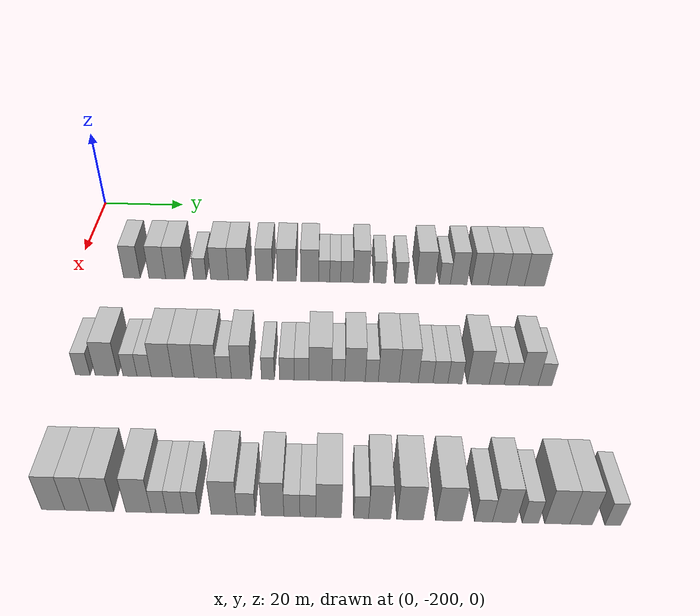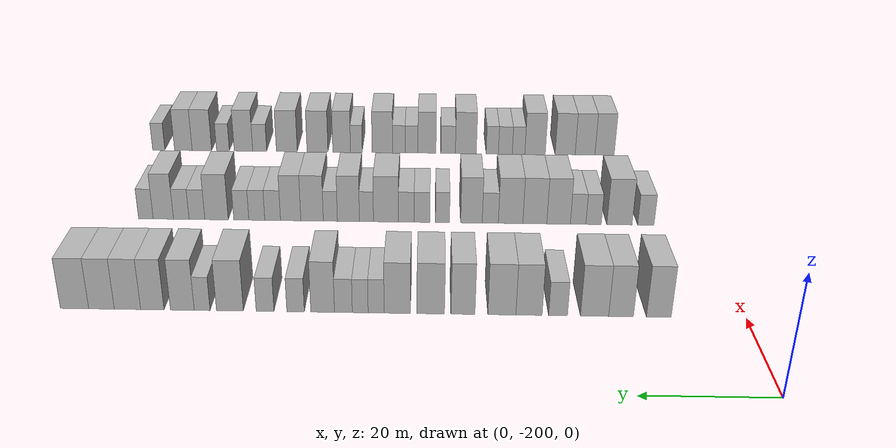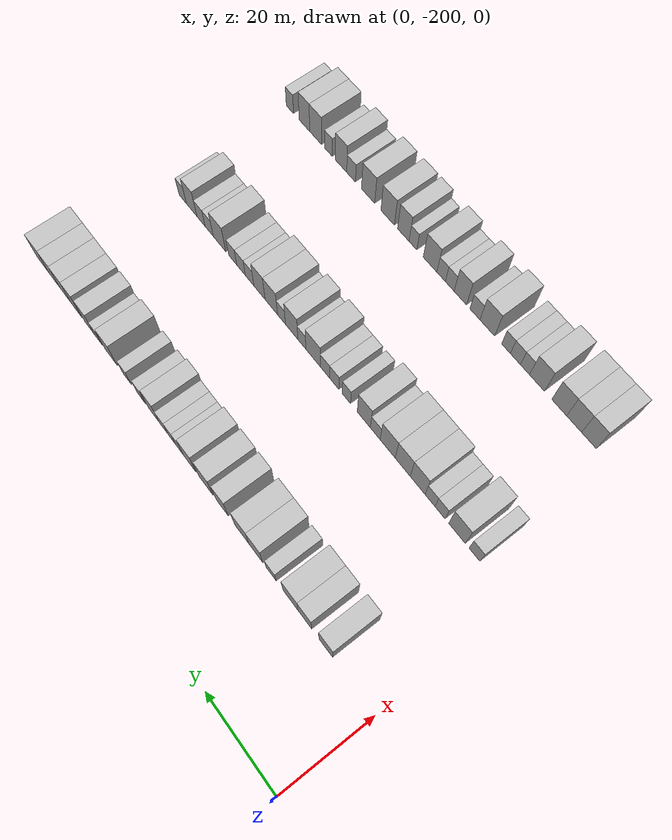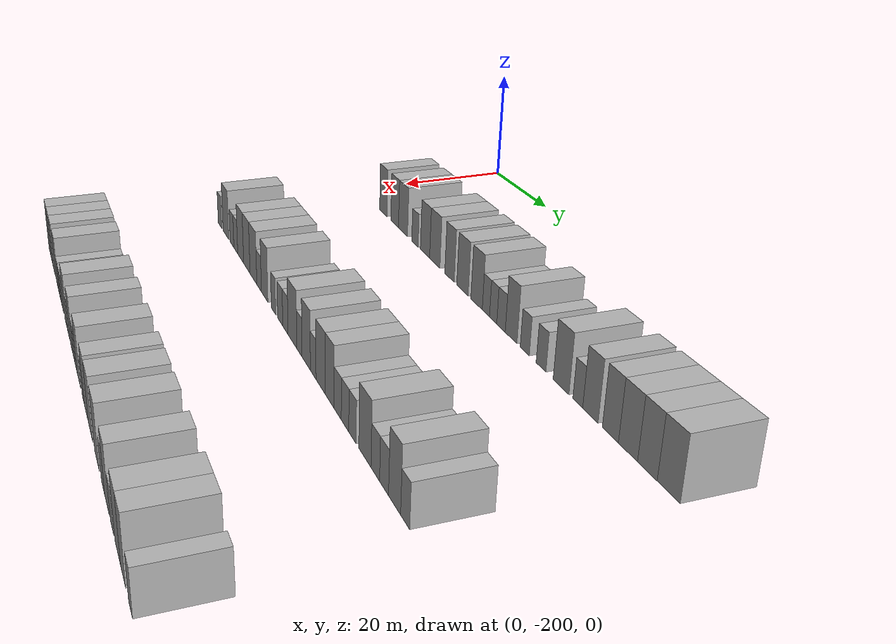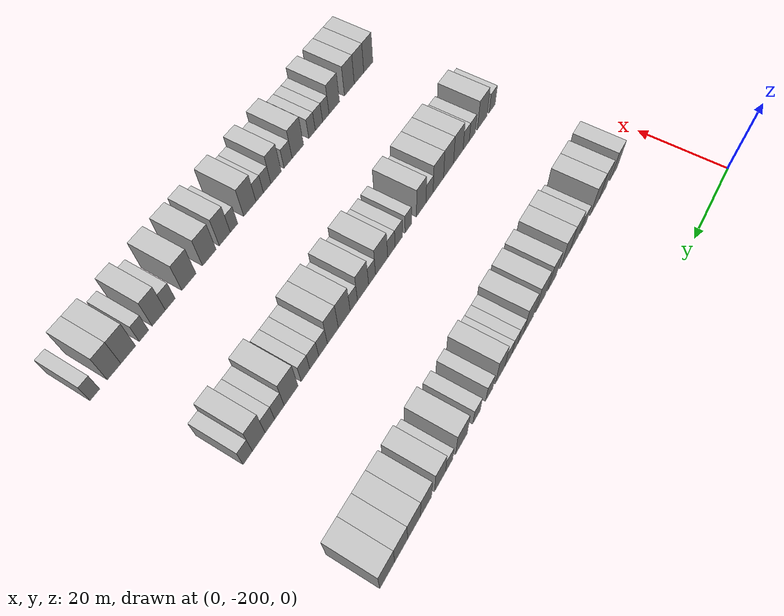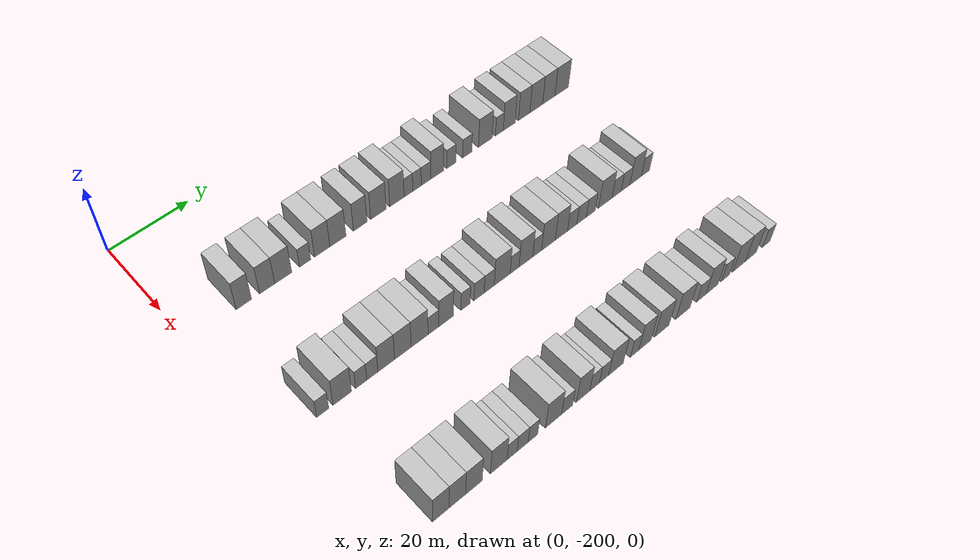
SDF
<sdf version="1.6">
 <world name="default">
  <model name="building_25">
   <static>1</static>
   <pose>25.0000 -186.5937 0 0.000000 0.000000 0.000000</pose>
   <link name="link">
    <pose>0 0 4.50 0 0 0</pose>
    <collision name="collision"><geometry><box><size>10.0000 3.7844 9.0000</size></box></geometry></collision>
    <visual name="visual">
     <cast_shadows>0</cast_shadows>
     <geometry><box><size>10.0000 3.7844 9.0000</size></box></geometry>
     <material>
      <script>
       <uri>model://HANNAS_wall/materials/scripts</uri>
       <uri>model://HANNAS_wall/materials/textures</uri>
       <name>vrc/HANNAS_wall</name>
      </script>
     </material>
    </visual>
   </link>
  </model>
  <model name="building_26">
   <static>1</static>
   <pose>25.0000 -180.8033 0 0.000000 0.000000 0.000000</pose>
   <link name="link">
    <pose>0 0 4.50 0 0 0</pose>
    <collision name="collision"><geometry><box><size>10.0000 3.7964 9.0000</size></box></geometry></collision>
    <visual name="visual">
     <cast_shadows>0</cast_shadows>
     <geometry><box><size>10.0000 3.7964 9.0000</size></box></geometry>
     <material>
      <script>
       <uri>model://HANNAS_wall/materials/scripts</uri>
       <uri>model://HANNAS_wall/materials/textures</uri>
       <name>vrc/HANNAS_wall</name>
      </script>
     </material>
    </visual>
   </link>
  </model>
  <model name="building_27">
   <static>1</static>
   <pose>25.0000 -176.7418 0 0.000000 0.000000 0.000000</pose>
   <link name="link">
    <pose>0 0 4.50 0 0 0</pose>
    <collision name="collision"><geometry><box><size>10.0000 4.3265 9.0000</size></box></geometry></collision>
    <visual name="visual">
     <cast_shadows>0</cast_shadows>
     <geometry><box><size>10.0000 4.3265 9.0000</size></box></geometry>
     <material>
      <script>
       <uri>model://HANNAS_wall/materials/scripts</uri>
       <uri>model://HANNAS_wall/materials/textures</uri>
       <name>vrc/HANNAS_wall</name>
      </script>
     </material>
    </visual>
   </link>
  </model>
  <model name="building_28">
   <static>1</static>
   <pose>25.0000 -171.1275 0 0.000000 0.000000 0.000000</pose>
   <link name="link">
    <pose>0 0 3.00 0 0 0</pose>
    <collision name="collision"><geometry><box><size>10.0000 2.9022 6.0000</size></box></geometry></collision>
    <visual name="visual">
     <cast_shadows>0</cast_shadows>
     <geometry><box><size>10.0000 2.9022 6.0000</size></box></geometry>
     <material>
      <script>
       <uri>model://HANNAS_wall/materials/scripts</uri>
       <uri>model://HANNAS_wall/materials/textures</uri>
       <name>vrc/HANNAS_wall</name>
      </script>
     </material>
    </visual>
   </link>
  </model>
  <model name="building_29">
   <static>1</static>
   <pose>25.0000 -166.6562 0 0.000000 0.000000 0.000000</pose>
   <link name="link">
    <pose>0 0 4.50 0 0 0</pose>
    <collision name="collision"><geometry><box><size>10.0000 4.0403 9.0000</size></box></geometry></collision>
    <visual name="visual">
     <cast_shadows>0</cast_shadows>
     <geometry><box><size>10.0000 4.0403 9.0000</size></box></geometry>
     <material>
      <script>
       <uri>model://HANNAS_wall/materials/scripts</uri>
       <uri>model://HANNAS_wall/materials/textures</uri>
       <name>vrc/HANNAS_wall</name>
      </script>
     </material>
    </visual>
   </link>
  </model>
  <model name="building_30">
   <static>1</static>
   <pose>25.0000 -162.4796 0 0.000000 0.000000 0.000000</pose>
   <link name="link">
    <pose>0 0 4.50 0 0 0</pose>
    <collision name="collision"><geometry><box><size>10.0000 4.3129 9.0000</size></box></geometry></collision>
    <visual name="visual">
     <cast_shadows>0</cast_shadows>
     <geometry><box><size>10.0000 4.3129 9.0000</size></box></geometry>
     <material>
      <script>
       <uri>model://HANNAS_wall/materials/scripts</uri>
       <uri>model://HANNAS_wall/materials/textures</uri>
       <name>vrc/HANNAS_wall</name>
      </script>
     </material>
    </visual>
   </link>
  </model>
  <model name="building_31">
   <static>1</static>
   <pose>25.0000 -156.4669 0 0.000000 0.000000 0.000000</pose>
   <link name="link">
    <pose>0 0 4.50 0 0 0</pose>
    <collision name="collision"><geometry><box><size>10.0000 3.7126 9.0000</size></box></geometry></collision>
    <visual name="visual">
     <cast_shadows>0</cast_shadows>
     <geometry><box><size>10.0000 3.7126 9.0000</size></box></geometry>
     <material>
      <script>
       <uri>model://HANNAS_wall/materials/scripts</uri>
       <uri>model://HANNAS_wall/materials/textures</uri>
       <name>vrc/HANNAS_wall</name>
      </script>
     </material>
    </visual>
   </link>
  </model>
  <model name="building_32">
   <static>1</static>
   <pose>25.0000 -151.4702 0 0.000000 0.000000 0.000000</pose>
   <link name="link">
    <pose>0 0 4.50 0 0 0</pose>
    <collision name="collision"><geometry><box><size>10.0000 4.2809 9.0000</size></box></geometry></collision>
    <visual name="visual">
     <cast_shadows>0</cast_shadows>
     <geometry><box><size>10.0000 4.2809 9.0000</size></box></geometry>
     <material>
      <script>
       <uri>model://HANNAS_wall/materials/scripts</uri>
       <uri>model://HANNAS_wall/materials/textures</uri>
       <name>vrc/HANNAS_wall</name>
      </script>
     </material>
    </visual>
   </link>
  </model>
  <model name="building_33">
   <static>1</static>
   <pose>25.0000 -146.2983 0 0.000000 0.000000 0.000000</pose>
   <link name="link">
    <pose>0 0 4.50 0 0 0</pose>
    <collision name="collision"><geometry><box><size>10.0000 4.0628 9.0000</size></box></geometry></collision>
    <visual name="visual">
     <cast_shadows>0</cast_shadows>
     <geometry><box><size>10.0000 4.0628 9.0000</size></box></geometry>
     <material>
      <script>
       <uri>model://HANNAS_wall/materials/scripts</uri>
       <uri>model://HANNAS_wall/materials/textures</uri>
       <name>vrc/HANNAS_wall</name>
      </script>
     </material>
    </visual>
   </link>
  </model>
  <model name="building_34">
   <static>1</static>
   <pose>25.0000 -143.0275 0 0.000000 0.000000 0.000000</pose>
   <link name="link">
    <pose>0 0 3.00 0 0 0</pose>
    <collision name="collision"><geometry><box><size>10.0000 2.4788 6.0000</size></box></geometry></collision>
    <visual name="visual">
     <cast_shadows>0</cast_shadows>
     <geometry><box><size>10.0000 2.4788 6.0000</size></box></geometry>
     <material>
      <script>
       <uri>model://HANNAS_wall/materials/scripts</uri>
       <uri>model://HANNAS_wall/materials/textures</uri>
       <name>vrc/HANNAS_wall</name>
      </script>
     </material>
    </visual>
   </link>
  </model>
  <model name="building_35">
   <static>1</static>
   <pose>25.0000 -140.5641 0 0.000000 0.000000 0.000000</pose>
   <link name="link">
    <pose>0 0 3.00 0 0 0</pose>
    <collision name="collision"><geometry><box><size>10.0000 2.4481 6.0000</size></box></geometry></collision>
    <visual name="visual">
     <cast_shadows>0</cast_shadows>
     <geometry><box><size>10.0000 2.4481 6.0000</size></box></geometry>
     <material>
      <script>
       <uri>model://HANNAS_wall/materials/scripts</uri>
       <uri>model://HANNAS_wall/materials/textures</uri>
       <name>vrc/HANNAS_wall</name>
      </script>
     </material>
    </visual>
   </link>
  </model>
  <model name="building_36">
   <static>1</static>
   <pose>25.0000 -137.9579 0 0.000000 0.000000 0.000000</pose>
   <link name="link">
    <pose>0 0 3.00 0 0 0</pose>
    <collision name="collision"><geometry><box><size>10.0000 2.7643 6.0000</size></box></geometry></collision>
    <visual name="visual">
     <cast_shadows>0</cast_shadows>
     <geometry><box><size>10.0000 2.7643 6.0000</size></box></geometry>
     <material>
      <script>
       <uri>model://HANNAS_wall/materials/scripts</uri>
       <uri>model://HANNAS_wall/materials/textures</uri>
       <name>vrc/HANNAS_wall</name>
      </script>
     </material>
    </visual>
   </link>
  </model>
  <model name="building_37">
   <static>1</static>
   <pose>25.0000 -134.7346 0 0.000000 0.000000 0.000000</pose>
   <link name="link">
    <pose>0 0 4.50 0 0 0</pose>
    <collision name="collision"><geometry><box><size>10.0000 3.6822 9.0000</size></box></geometry></collision>
    <visual name="visual">
     <cast_shadows>0</cast_shadows>
     <geometry><box><size>10.0000 3.6822 9.0000</size></box></geometry>
     <material>
      <script>
       <uri>model://HANNAS_wall/materials/scripts</uri>
       <uri>model://HANNAS_wall/materials/textures</uri>
       <name>vrc/HANNAS_wall</name>
      </script>
     </material>
    </visual>
   </link>
  </model>
  <model name="building_38">
   <static>1</static>
   <pose>25.0000 -130.5319 0 0.000000 0.000000 0.000000</pose>
   <link name="link">
    <pose>0 0 3.00 0 0 0</pose>
    <collision name="collision"><geometry><box><size>10.0000 2.7231 6.0000</size></box></geometry></collision>
    <visual name="visual">
     <cast_shadows>0</cast_shadows>
     <geometry><box><size>10.0000 2.7231 6.0000</size></box></geometry>
     <material>
      <script>
       <uri>model://HANNAS_wall/materials/scripts</uri>
       <uri>model://HANNAS_wall/materials/textures</uri>
       <name>vrc/HANNAS_wall</name>
      </script>
     </material>
    </visual>
   </link>
  </model>
  <model name="building_39">
   <static>1</static>
   <pose>25.0000 -125.7848 0 0.000000 0.000000 0.000000</pose>
   <link name="link">
    <pose>0 0 3.00 0 0 0</pose>
    <collision name="collision"><geometry><box><size>10.0000 2.7711 6.0000</size></box></geometry></collision>
    <visual name="visual">
     <cast_shadows>0</cast_shadows>
     <geometry><box><size>10.0000 2.7711 6.0000</size></box></geometry>
     <material>
      <script>
       <uri>model://HANNAS_wall/materials/scripts</uri>
       <uri>model://HANNAS_wall/materials/textures</uri>
       <name>vrc/HANNAS_wall</name>
      </script>
     </material>
    </visual>
   </link>
  </model>
  <model name="building_40">
   <static>1</static>
   <pose>25.0000 -120.3024 0 0.000000 0.000000 0.000000</pose>
   <link name="link">
    <pose>0 0 4.50 0 0 0</pose>
    <collision name="collision"><geometry><box><size>10.0000 4.1938 9.0000</size></box></geometry></collision>
    <visual name="visual">
     <cast_shadows>0</cast_shadows>
     <geometry><box><size>10.0000 4.1938 9.0000</size></box></geometry>
     <material>
      <script>
       <uri>model://HANNAS_wall/materials/scripts</uri>
       <uri>model://HANNAS_wall/materials/textures</uri>
       <name>vrc/HANNAS_wall</name>
      </script>
     </material>
    </visual>
   </link>
  </model>
  <model name="building_41">
   <static>1</static>
   <pose>25.0000 -115.9697 0 0.000000 0.000000 0.000000</pose>
   <link name="link">
    <pose>0 0 3.00 0 0 0</pose>
    <collision name="collision"><geometry><box><size>10.0000 2.4716 6.0000</size></box></geometry></collision>
    <visual name="visual">
     <cast_shadows>0</cast_shadows>
     <geometry><box><size>10.0000 2.4716 6.0000</size></box></geometry>
     <material>
      <script>
       <uri>model://HANNAS_wall/materials/scripts</uri>
       <uri>model://HANNAS_wall/materials/textures</uri>
       <name>vrc/HANNAS_wall</name>
      </script>
     </material>
    </visual>
   </link>
  </model>
  <model name="building_42">
   <static>1</static>
   <pose>25.0000 -112.8716 0 0.000000 0.000000 0.000000</pose>
   <link name="link">
    <pose>0 0 4.50 0 0 0</pose>
    <collision name="collision"><geometry><box><size>10.0000 3.7246 9.0000</size></box></geometry></collision>
    <visual name="visual">
     <cast_shadows>0</cast_shadows>
     <geometry><box><size>10.0000 3.7246 9.0000</size></box></geometry>
     <material>
      <script>
       <uri>model://HANNAS_wall/materials/scripts</uri>
       <uri>model://HANNAS_wall/materials/textures</uri>
       <name>vrc/HANNAS_wall</name>
      </script>
     </material>
    </visual>
   </link>
  </model>
  <model name="building_43">
   <static>1</static>
   <pose>25.0000 -108.1810 0 0.000000 0.000000 0.000000</pose>
   <link name="link">
    <pose>0 0 4.50 0 0 0</pose>
    <collision name="collision"><geometry><box><size>10.0000 3.6565 9.0000</size></box></geometry></collision>
    <visual name="visual">
     <cast_shadows>0</cast_shadows>
     <geometry><box><size>10.0000 3.6565 9.0000</size></box></geometry>
     <material>
      <script>
       <uri>model://HANNAS_wall/materials/scripts</uri>
       <uri>model://HANNAS_wall/materials/textures</uri>
       <name>vrc/HANNAS_wall</name>
      </script>
     </material>
    </visual>
   </link>
  </model>
  <model name="building_44">
   <static>1</static>
   <pose>25.0000 -104.2847 0 0.000000 0.000000 0.000000</pose>
   <link name="link">
    <pose>0 0 4.50 0 0 0</pose>
    <collision name="collision"><geometry><box><size>10.0000 4.1361 9.0000</size></box></geometry></collision>
    <visual name="visual">
     <cast_shadows>0</cast_shadows>
     <geometry><box><size>10.0000 4.1361 9.0000</size></box></geometry>
     <material>
      <script>
       <uri>model://HANNAS_wall/materials/scripts</uri>
       <uri>model://HANNAS_wall/materials/textures</uri>
       <name>vrc/HANNAS_wall</name>
      </script>
     </material>
    </visual>
   </link>
  </model>
  <model name="building_45">
   <static>1</static>
   <pose>25.0000 -100.2084 0 0.000000 0.000000 0.000000</pose>
   <link name="link">
    <pose>0 0 4.50 0 0 0</pose>
    <collision name="collision"><geometry><box><size>10.0000 4.0166 9.0000</size></box></geometry></collision>
    <visual name="visual">
     <cast_shadows>0</cast_shadows>
     <geometry><box><size>10.0000 4.0166 9.0000</size></box></geometry>
     <material>
      <script>
       <uri>model://HANNAS_wall/materials/scripts</uri>
       <uri>model://HANNAS_wall/materials/textures</uri>
       <name>vrc/HANNAS_wall</name>
      </script>
     </material>
    </visual>
   </link>
  </model>
  <model name="building_46">
   <static>1</static>
   <pose>25.0000 -95.9738 0 0.000000 0.000000 0.000000</pose>
   <link name="link">
    <pose>0 0 4.50 0 0 0</pose>
    <collision name="collision"><geometry><box><size>10.0000 4.4526 9.0000</size></box></geometry></collision>
    <visual name="visual">
     <cast_shadows>0</cast_shadows>
     <geometry><box><size>10.0000 4.4526 9.0000</size></box></geometry>
     <material>
      <script>
       <uri>model://HANNAS_wall/materials/scripts</uri>
       <uri>model://HANNAS_wall/materials/textures</uri>
       <name>vrc/HANNAS_wall</name>
      </script>
     </material>
    </visual>
   </link>
  </model>
  <model name="building_167">
   <static>1</static>
   <pose>55.0000 -189.7934 0 0.000000 0.000000 0.000000</pose>
   <link name="link">
    <pose>0 0 3.00 0 0 0</pose>
    <collision name="collision"><geometry><box><size>10.0000 2.9059 6.0000</size></box></geometry></collision>
    <visual name="visual">
     <cast_shadows>0</cast_shadows>
     <geometry><box><size>10.0000 2.9059 6.0000</size></box></geometry>
     <material>
      <script>
       <uri>model://HANNAS_wall/materials/scripts</uri>
       <uri>model://HANNAS_wall/materials/textures</uri>
       <name>vrc/HANNAS_wall</name>
      </script>
     </material>
    </visual>
   </link>
  </model>
  <model name="building_168">
   <static>1</static>
   <pose>55.0000 -185.1024 0 0.000000 0.000000 0.000000</pose>
   <link name="link">
    <pose>0 0 4.50 0 0 0</pose>
    <collision name="collision"><geometry><box><size>10.0000 4.4762 9.0000</size></box></geometry></collision>
    <visual name="visual">
     <cast_shadows>0</cast_shadows>
     <geometry><box><size>10.0000 4.4762 9.0000</size></box></geometry>
     <material>
      <script>
       <uri>model://HANNAS_wall/materials/scripts</uri>
       <uri>model://HANNAS_wall/materials/textures</uri>
       <name>vrc/HANNAS_wall</name>
      </script>
     </material>
    </visual>
   </link>
  </model>
  <model name="building_169">
   <static>1</static>
   <pose>55.0000 -180.4954 0 0.000000 0.000000 0.000000</pose>
   <link name="link">
    <pose>0 0 3.00 0 0 0</pose>
    <collision name="collision"><geometry><box><size>10.0000 2.7379 6.0000</size></box></geometry></collision>
    <visual name="visual">
     <cast_shadows>0</cast_shadows>
     <geometry><box><size>10.0000 2.7379 6.0000</size></box></geometry>
     <material>
      <script>
       <uri>model://HANNAS_wall/materials/scripts</uri>
       <uri>model://HANNAS_wall/materials/textures</uri>
       <name>vrc/HANNAS_wall</name>
      </script>
     </material>
    </visual>
   </link>
  </model>
  <model name="building_170">
   <static>1</static>
   <pose>55.0000 -177.7402 0 0.000000 0.000000 0.000000</pose>
   <link name="link">
    <pose>0 0 3.00 0 0 0</pose>
    <collision name="collision"><geometry><box><size>10.0000 2.7724 6.0000</size></box></geometry></collision>
    <visual name="visual">
     <cast_shadows>0</cast_shadows>
     <geometry><box><size>10.0000 2.7724 6.0000</size></box></geometry>
     <material>
      <script>
       <uri>model://HANNAS_wall/materials/scripts</uri>
       <uri>model://HANNAS_wall/materials/textures</uri>
       <name>vrc/HANNAS_wall</name>
      </script>
     </material>
    </visual>
   </link>
  </model>
  <model name="building_171">
   <static>1</static>
   <pose>55.0000 -174.2596 0 0.000000 0.000000 0.000000</pose>
   <link name="link">
    <pose>0 0 4.50 0 0 0</pose>
    <collision name="collision"><geometry><box><size>10.0000 4.1888 9.0000</size></box></geometry></collision>
    <visual name="visual">
     <cast_shadows>0</cast_shadows>
     <geometry><box><size>10.0000 4.1888 9.0000</size></box></geometry>
     <material>
      <script>
       <uri>model://HANNAS_wall/materials/scripts</uri>
       <uri>model://HANNAS_wall/materials/textures</uri>
       <name>vrc/HANNAS_wall</name>
      </script>
     </material>
    </visual>
   </link>
  </model>
  <model name="building_172">
   <static>1</static>
   <pose>55.0000 -170.0281 0 0.000000 0.000000 0.000000</pose>
   <link name="link">
    <pose>0 0 4.50 0 0 0</pose>
    <collision name="collision"><geometry><box><size>10.0000 4.2741 9.0000</size></box></geometry></collision>
    <visual name="visual">
     <cast_shadows>0</cast_shadows>
     <geometry><box><size>10.0000 4.2741 9.0000</size></box></geometry>
     <material>
      <script>
       <uri>model://HANNAS_wall/materials/scripts</uri>
       <uri>model://HANNAS_wall/materials/textures</uri>
       <name>vrc/HANNAS_wall</name>
      </script>
     </material>
    </visual>
   </link>
  </model>
  <model name="building_173">
   <static>1</static>
   <pose>55.0000 -165.7007 0 0.000000 0.000000 0.000000</pose>
   <link name="link">
    <pose>0 0 4.50 0 0 0</pose>
    <collision name="collision"><geometry><box><size>10.0000 4.3806 9.0000</size></box></geometry></collision>
    <visual name="visual">
     <cast_shadows>0</cast_shadows>
     <geometry><box><size>10.0000 4.3806 9.0000</size></box></geometry>
     <material>
      <script>
       <uri>model://HANNAS_wall/materials/scripts</uri>
       <uri>model://HANNAS_wall/materials/textures</uri>
       <name>vrc/HANNAS_wall</name>
      </script>
     </material>
    </visual>
   </link>
  </model>
  <model name="building_174">
   <static>1</static>
   <pose>55.0000 -162.0712 0 0.000000 0.000000 0.000000</pose>
   <link name="link">
    <pose>0 0 3.00 0 0 0</pose>
    <collision name="collision"><geometry><box><size>10.0000 2.8784 6.0000</size></box></geometry></collision>
    <visual name="visual">
     <cast_shadows>0</cast_shadows>
     <geometry><box><size>10.0000 2.8784 6.0000</size></box></geometry>
     <material>
      <script>
       <uri>model://HANNAS_wall/materials/scripts</uri>
       <uri>model://HANNAS_wall/materials/textures</uri>
       <name>vrc/HANNAS_wall</name>
      </script>
     </material>
    </visual>
   </link>
  </model>
  <model name="building_175">
   <static>1</static>
   <pose>55.0000 -158.7003 0 0.000000 0.000000 0.000000</pose>
   <link name="link">
    <pose>0 0 4.50 0 0 0</pose>
    <collision name="collision"><geometry><box><size>10.0000 3.8636 9.0000</size></box></geometry></collision>
    <visual name="visual">
     <cast_shadows>0</cast_shadows>
     <geometry><box><size>10.0000 3.8636 9.0000</size></box></geometry>
     <material>
      <script>
       <uri>model://HANNAS_wall/materials/scripts</uri>
       <uri>model://HANNAS_wall/materials/textures</uri>
       <name>vrc/HANNAS_wall</name>
      </script>
     </material>
    </visual>
   </link>
  </model>
  <model name="building_176">
   <static>1</static>
   <pose>55.0000 -153.5110 0 0.000000 0.000000 0.000000</pose>
   <link name="link">
    <pose>0 0 3.00 0 0 0</pose>
    <collision name="collision"><geometry><box><size>10.0000 2.5150 6.0000</size></box></geometry></collision>
    <visual name="visual">
     <cast_shadows>0</cast_shadows>
     <geometry><box><size>10.0000 2.5150 6.0000</size></box></geometry>
     <material>
      <script>
       <uri>model://HANNAS_wall/materials/scripts</uri>
       <uri>model://HANNAS_wall/materials/textures</uri>
       <name>vrc/HANNAS_wall</name>
      </script>
     </material>
    </visual>
   </link>
  </model>
  <model name="building_177">
   <static>1</static>
   <pose>55.0000 -149.8290 0 0.000000 0.000000 0.000000</pose>
   <link name="link">
    <pose>0 0 3.00 0 0 0</pose>
    <collision name="collision"><geometry><box><size>10.0000 2.8490 6.0000</size></box></geometry></collision>
    <visual name="visual">
     <cast_shadows>0</cast_shadows>
     <geometry><box><size>10.0000 2.8490 6.0000</size></box></geometry>
     <material>
      <script>
       <uri>model://HANNAS_wall/materials/scripts</uri>
       <uri>model://HANNAS_wall/materials/textures</uri>
       <name>vrc/HANNAS_wall</name>
      </script>
     </material>
    </visual>
   </link>
  </model>
  <model name="building_178">
   <static>1</static>
   <pose>55.0000 -147.0039 0 0.000000 0.000000 0.000000</pose>
   <link name="link">
    <pose>0 0 3.00 0 0 0</pose>
    <collision name="collision"><geometry><box><size>10.0000 2.8011 6.0000</size></box></geometry></collision>
    <visual name="visual">
     <cast_shadows>0</cast_shadows>
     <geometry><box><size>10.0000 2.8011 6.0000</size></box></geometry>
     <material>
      <script>
       <uri>model://HANNAS_wall/materials/scripts</uri>
       <uri>model://HANNAS_wall/materials/textures</uri>
       <name>vrc/HANNAS_wall</name>
      </script>
     </material>
    </visual>
   </link>
  </model>
  <model name="building_179">
   <static>1</static>
   <pose>55.0000 -143.3669 0 0.000000 0.000000 0.000000</pose>
   <link name="link">
    <pose>0 0 4.50 0 0 0</pose>
    <collision name="collision"><geometry><box><size>10.0000 4.4730 9.0000</size></box></geometry></collision>
    <visual name="visual">
     <cast_shadows>0</cast_shadows>
     <geometry><box><size>10.0000 4.4730 9.0000</size></box></geometry>
     <material>
      <script>
       <uri>model://HANNAS_wall/materials/scripts</uri>
       <uri>model://HANNAS_wall/materials/textures</uri>
       <name>vrc/HANNAS_wall</name>
      </script>
     </material>
    </visual>
   </link>
  </model>
  <model name="building_180">
   <static>1</static>
   <pose>55.0000 -139.8713 0 0.000000 0.000000 0.000000</pose>
   <link name="link">
    <pose>0 0 3.00 0 0 0</pose>
    <collision name="collision"><geometry><box><size>10.0000 2.5184 6.0000</size></box></geometry></collision>
    <visual name="visual">
     <cast_shadows>0</cast_shadows>
     <geometry><box><size>10.0000 2.5184 6.0000</size></box></geometry>
     <material>
      <script>
       <uri>model://HANNAS_wall/materials/scripts</uri>
       <uri>model://HANNAS_wall/materials/textures</uri>
       <name>vrc/HANNAS_wall</name>
      </script>
     </material>
    </visual>
   </link>
  </model>
  <model name="building_181">
   <static>1</static>
   <pose>55.0000 -136.6347 0 0.000000 0.000000 0.000000</pose>
   <link name="link">
    <pose>0 0 4.50 0 0 0</pose>
    <collision name="collision"><geometry><box><size>10.0000 3.9548 9.0000</size></box></geometry></collision>
    <visual name="visual">
     <cast_shadows>0</cast_shadows>
     <geometry><box><size>10.0000 3.9548 9.0000</size></box></geometry>
     <material>
      <script>
       <uri>model://HANNAS_wall/materials/scripts</uri>
       <uri>model://HANNAS_wall/materials/textures</uri>
       <name>vrc/HANNAS_wall</name>
      </script>
     </material>
    </visual>
   </link>
  </model>
  <model name="building_182">
   <static>1</static>
   <pose>55.0000 -133.3913 0 0.000000 0.000000 0.000000</pose>
   <link name="link">
    <pose>0 0 3.00 0 0 0</pose>
    <collision name="collision"><geometry><box><size>10.0000 2.5319 6.0000</size></box></geometry></collision>
    <visual name="visual">
     <cast_shadows>0</cast_shadows>
     <geometry><box><size>10.0000 2.5319 6.0000</size></box></geometry>
     <material>
      <script>
       <uri>model://HANNAS_wall/materials/scripts</uri>
       <uri>model://HANNAS_wall/materials/textures</uri>
       <name>vrc/HANNAS_wall</name>
      </script>
     </material>
    </visual>
   </link>
  </model>
  <model name="building_183">
   <static>1</static>
   <pose>55.0000 -130.0988 0 0.000000 0.000000 0.000000</pose>
   <link name="link">
    <pose>0 0 4.50 0 0 0</pose>
    <collision name="collision"><geometry><box><size>10.0000 4.0531 9.0000</size></box></geometry></collision>
    <visual name="visual">
     <cast_shadows>0</cast_shadows>
     <geometry><box><size>10.0000 4.0531 9.0000</size></box></geometry>
     <material>
      <script>
       <uri>model://HANNAS_wall/materials/scripts</uri>
       <uri>model://HANNAS_wall/materials/textures</uri>
       <name>vrc/HANNAS_wall</name>
      </script>
     </material>
    </visual>
   </link>
  </model>
  <model name="building_184">
   <static>1</static>
   <pose>55.0000 -126.2390 0 0.000000 0.000000 0.000000</pose>
   <link name="link">
    <pose>0 0 4.50 0 0 0</pose>
    <collision name="collision"><geometry><box><size>10.0000 3.6665 9.0000</size></box></geometry></collision>
    <visual name="visual">
     <cast_shadows>0</cast_shadows>
     <geometry><box><size>10.0000 3.6665 9.0000</size></box></geometry>
     <material>
      <script>
       <uri>model://HANNAS_wall/materials/scripts</uri>
       <uri>model://HANNAS_wall/materials/textures</uri>
       <name>vrc/HANNAS_wall</name>
      </script>
     </material>
    </visual>
   </link>
  </model>
  <model name="building_185">
   <static>1</static>
   <pose>55.0000 -122.9894 0 0.000000 0.000000 0.000000</pose>
   <link name="link">
    <pose>0 0 3.00 0 0 0</pose>
    <collision name="collision"><geometry><box><size>10.0000 2.8327 6.0000</size></box></geometry></collision>
    <visual name="visual">
     <cast_shadows>0</cast_shadows>
     <geometry><box><size>10.0000 2.8327 6.0000</size></box></geometry>
     <material>
      <script>
       <uri>model://HANNAS_wall/materials/scripts</uri>
       <uri>model://HANNAS_wall/materials/textures</uri>
       <name>vrc/HANNAS_wall</name>
      </script>
     </material>
    </visual>
   </link>
  </model>
  <model name="building_186">
   <static>1</static>
   <pose>55.0000 -120.1309 0 0.000000 0.000000 0.000000</pose>
   <link name="link">
    <pose>0 0 3.00 0 0 0</pose>
    <collision name="collision"><geometry><box><size>10.0000 2.8843 6.0000</size></box></geometry></collision>
    <visual name="visual">
     <cast_shadows>0</cast_shadows>
     <geometry><box><size>10.0000 2.8843 6.0000</size></box></geometry>
     <material>
      <script>
       <uri>model://HANNAS_wall/materials/scripts</uri>
       <uri>model://HANNAS_wall/materials/textures</uri>
       <name>vrc/HANNAS_wall</name>
      </script>
     </material>
    </visual>
   </link>
  </model>
  <model name="building_187">
   <static>1</static>
   <pose>55.0000 -117.3300 0 0.000000 0.000000 0.000000</pose>
   <link name="link">
    <pose>0 0 3.00 0 0 0</pose>
    <collision name="collision"><geometry><box><size>10.0000 2.7175 6.0000</size></box></geometry></collision>
    <visual name="visual">
     <cast_shadows>0</cast_shadows>
     <geometry><box><size>10.0000 2.7175 6.0000</size></box></geometry>
     <material>
      <script>
       <uri>model://HANNAS_wall/materials/scripts</uri>
       <uri>model://HANNAS_wall/materials/textures</uri>
       <name>vrc/HANNAS_wall</name>
      </script>
     </material>
    </visual>
   </link>
  </model>
  <model name="building_188">
   <static>1</static>
   <pose>55.0000 -112.8530 0 0.000000 0.000000 0.000000</pose>
   <link name="link">
    <pose>0 0 4.50 0 0 0</pose>
    <collision name="collision"><geometry><box><size>10.0000 4.2366 9.0000</size></box></geometry></collision>
    <visual name="visual">
     <cast_shadows>0</cast_shadows>
     <geometry><box><size>10.0000 4.2366 9.0000</size></box></geometry>
     <material>
      <script>
       <uri>model://HANNAS_wall/materials/scripts</uri>
       <uri>model://HANNAS_wall/materials/textures</uri>
       <name>vrc/HANNAS_wall</name>
      </script>
     </material>
    </visual>
   </link>
  </model>
  <model name="building_189">
   <static>1</static>
   <pose>55.0000 -109.3057 0 0.000000 0.000000 0.000000</pose>
   <link name="link">
    <pose>0 0 3.00 0 0 0</pose>
    <collision name="collision"><geometry><box><size>10.0000 2.8580 6.0000</size></box></geometry></collision>
    <visual name="visual">
     <cast_shadows>0</cast_shadows>
     <geometry><box><size>10.0000 2.8580 6.0000</size></box></geometry>
     <material>
      <script>
       <uri>model://HANNAS_wall/materials/scripts</uri>
       <uri>model://HANNAS_wall/materials/textures</uri>
       <name>vrc/HANNAS_wall</name>
      </script>
     </material>
    </visual>
   </link>
  </model>
  <model name="building_190">
   <static>1</static>
   <pose>55.0000 -106.4666 0 0.000000 0.000000 0.000000</pose>
   <link name="link">
    <pose>0 0 3.00 0 0 0</pose>
    <collision name="collision"><geometry><box><size>10.0000 2.8201 6.0000</size></box></geometry></collision>
    <visual name="visual">
     <cast_shadows>0</cast_shadows>
     <geometry><box><size>10.0000 2.8201 6.0000</size></box></geometry>
     <material>
      <script>
       <uri>model://HANNAS_wall/materials/scripts</uri>
       <uri>model://HANNAS_wall/materials/textures</uri>
       <name>vrc/HANNAS_wall</name>
      </script>
     </material>
    </visual>
   </link>
  </model>
  <model name="building_191">
   <static>1</static>
   <pose>55.0000 -103.2172 0 0.000000 0.000000 0.000000</pose>
   <link name="link">
    <pose>0 0 4.50 0 0 0</pose>
    <collision name="collision"><geometry><box><size>10.0000 3.6789 9.0000</size></box></geometry></collision>
    <visual name="visual">
     <cast_shadows>0</cast_shadows>
     <geometry><box><size>10.0000 3.6789 9.0000</size></box></geometry>
     <material>
      <script>
       <uri>model://HANNAS_wall/materials/scripts</uri>
       <uri>model://HANNAS_wall/materials/textures</uri>
       <name>vrc/HANNAS_wall</name>
      </script>
     </material>
    </visual>
   </link>
  </model>
  <model name="building_192">
   <static>1</static>
   <pose>55.0000 -100.0561 0 0.000000 0.000000 0.000000</pose>
   <link name="link">
    <pose>0 0 3.00 0 0 0</pose>
    <collision name="collision"><geometry><box><size>10.0000 2.6432 6.0000</size></box></geometry></collision>
    <visual name="visual">
     <cast_shadows>0</cast_shadows>
     <geometry><box><size>10.0000 2.6432 6.0000</size></box></geometry>
     <material>
      <script>
       <uri>model://HANNAS_wall/materials/scripts</uri>
       <uri>model://HANNAS_wall/materials/textures</uri>
       <name>vrc/HANNAS_wall</name>
      </script>
     </material>
    </visual>
   </link>
  </model>
  <model name="building_308">
   <static>1</static>
   <pose>85.0000 -186.6266 0 0.000000 0.000000 0.000000</pose>
   <link name="link">
    <pose>0 0 4.50 0 0 0</pose>
    <collision name="collision"><geometry><box><size>10.0000 3.8840 9.0000</size></box></geometry></collision>
    <visual name="visual">
     <cast_shadows>0</cast_shadows>
     <geometry><box><size>10.0000 3.8840 9.0000</size></box></geometry>
     <material>
      <script>
       <uri>model://HANNAS_wall/materials/scripts</uri>
       <uri>model://HANNAS_wall/materials/textures</uri>
       <name>vrc/HANNAS_wall</name>
      </script>
     </material>
    </visual>
   </link>
  </model>
  <model name="building_309">
   <static>1</static>
   <pose>85.0000 -182.6789 0 0.000000 0.000000 0.000000</pose>
   <link name="link">
    <pose>0 0 4.50 0 0 0</pose>
    <collision name="collision"><geometry><box><size>10.0000 4.0114 9.0000</size></box></geometry></collision>
    <visual name="visual">
     <cast_shadows>0</cast_shadows>
     <geometry><box><size>10.0000 4.0114 9.0000</size></box></geometry>
     <material>
      <script>
       <uri>model://HANNAS_wall/materials/scripts</uri>
       <uri>model://HANNAS_wall/materials/textures</uri>
       <name>vrc/HANNAS_wall</name>
      </script>
     </material>
    </visual>
   </link>
  </model>
  <model name="building_310">
   <static>1</static>
   <pose>85.0000 -178.6504 0 0.000000 0.000000 0.000000</pose>
   <link name="link">
    <pose>0 0 4.50 0 0 0</pose>
    <collision name="collision"><geometry><box><size>10.0000 4.0456 9.0000</size></box></geometry></collision>
    <visual name="visual">
     <cast_shadows>0</cast_shadows>
     <geometry><box><size>10.0000 4.0456 9.0000</size></box></geometry>
     <material>
      <script>
       <uri>model://HANNAS_wall/materials/scripts</uri>
       <uri>model://HANNAS_wall/materials/textures</uri>
       <name>vrc/HANNAS_wall</name>
      </script>
     </material>
    </visual>
   </link>
  </model>
  <model name="building_311">
   <static>1</static>
   <pose>85.0000 -172.5517 0 0.000000 0.000000 0.000000</pose>
   <link name="link">
    <pose>0 0 4.50 0 0 0</pose>
    <collision name="collision"><geometry><box><size>10.0000 4.1517 9.0000</size></box></geometry></collision>
    <visual name="visual">
     <cast_shadows>0</cast_shadows>
     <geometry><box><size>10.0000 4.1517 9.0000</size></box></geometry>
     <material>
      <script>
       <uri>model://HANNAS_wall/materials/scripts</uri>
       <uri>model://HANNAS_wall/materials/textures</uri>
       <name>vrc/HANNAS_wall</name>
      </script>
     </material>
    </visual>
   </link>
  </model>
  <model name="building_312">
   <static>1</static>
   <pose>85.0000 -169.1992 0 0.000000 0.000000 0.000000</pose>
   <link name="link">
    <pose>0 0 3.00 0 0 0</pose>
    <collision name="collision"><geometry><box><size>10.0000 2.5534 6.0000</size></box></geometry></collision>
    <visual name="visual">
     <cast_shadows>0</cast_shadows>
     <geometry><box><size>10.0000 2.5534 6.0000</size></box></geometry>
     <material>
      <script>
       <uri>model://HANNAS_wall/materials/scripts</uri>
       <uri>model://HANNAS_wall/materials/textures</uri>
       <name>vrc/HANNAS_wall</name>
      </script>
     </material>
    </visual>
   </link>
  </model>
  <model name="building_313">
   <static>1</static>
   <pose>85.0000 -166.5138 0 0.000000 0.000000 0.000000</pose>
   <link name="link">
    <pose>0 0 3.00 0 0 0</pose>
    <collision name="collision"><geometry><box><size>10.0000 2.8174 6.0000</size></box></geometry></collision>
    <visual name="visual">
     <cast_shadows>0</cast_shadows>
     <geometry><box><size>10.0000 2.8174 6.0000</size></box></geometry>
     <material>
      <script>
       <uri>model://HANNAS_wall/materials/scripts</uri>
       <uri>model://HANNAS_wall/materials/textures</uri>
       <name>vrc/HANNAS_wall</name>
      </script>
     </material>
    </visual>
   </link>
  </model>
  <model name="building_314">
   <static>1</static>
   <pose>85.0000 -163.8595 0 0.000000 0.000000 0.000000</pose>
   <link name="link">
    <pose>0 0 3.00 0 0 0</pose>
    <collision name="collision"><geometry><box><size>10.0000 2.4913 6.0000</size></box></geometry></collision>
    <visual name="visual">
     <cast_shadows>0</cast_shadows>
     <geometry><box><size>10.0000 2.4913 6.0000</size></box></geometry>
     <material>
      <script>
       <uri>model://HANNAS_wall/materials/scripts</uri>
       <uri>model://HANNAS_wall/materials/textures</uri>
       <name>vrc/HANNAS_wall</name>
      </script>
     </material>
    </visual>
   </link>
  </model>
  <model name="building_315">
   <static>1</static>
   <pose>85.0000 -158.4828 0 0.000000 0.000000 0.000000</pose>
   <link name="link">
    <pose>0 0 4.50 0 0 0</pose>
    <collision name="collision"><geometry><box><size>10.0000 4.2621 9.0000</size></box></geometry></collision>
    <visual name="visual">
     <cast_shadows>0</cast_shadows>
     <geometry><box><size>10.0000 4.2621 9.0000</size></box></geometry>
     <material>
      <script>
       <uri>model://HANNAS_wall/materials/scripts</uri>
       <uri>model://HANNAS_wall/materials/textures</uri>
       <name>vrc/HANNAS_wall</name>
      </script>
     </material>
    </visual>
   </link>
  </model>
  <model name="building_316">
   <static>1</static>
   <pose>85.0000 -154.8747 0 0.000000 0.000000 0.000000</pose>
   <link name="link">
    <pose>0 0 3.00 0 0 0</pose>
    <collision name="collision"><geometry><box><size>10.0000 2.9540 6.0000</size></box></geometry></collision>
    <visual name="visual">
     <cast_shadows>0</cast_shadows>
     <geometry><box><size>10.0000 2.9540 6.0000</size></box></geometry>
     <material>
      <script>
       <uri>model://HANNAS_wall/materials/scripts</uri>
       <uri>model://HANNAS_wall/materials/textures</uri>
       <name>vrc/HANNAS_wall</name>
      </script>
     </material>
    </visual>
   </link>
  </model>
  <model name="building_317">
   <static>1</static>
   <pose>85.0000 -150.5633 0 0.000000 0.000000 0.000000</pose>
   <link name="link">
    <pose>0 0 4.50 0 0 0</pose>
    <collision name="collision"><geometry><box><size>10.0000 3.6690 9.0000</size></box></geometry></collision>
    <visual name="visual">
     <cast_shadows>0</cast_shadows>
     <geometry><box><size>10.0000 3.6690 9.0000</size></box></geometry>
     <material>
      <script>
       <uri>model://HANNAS_wall/materials/scripts</uri>
       <uri>model://HANNAS_wall/materials/textures</uri>
       <name>vrc/HANNAS_wall</name>
      </script>
     </material>
    </visual>
   </link>
  </model>
  <model name="building_318">
   <static>1</static>
   <pose>85.0000 -147.4145 0 0.000000 0.000000 0.000000</pose>
   <link name="link">
    <pose>0 0 3.00 0 0 0</pose>
    <collision name="collision"><geometry><box><size>10.0000 2.6286 6.0000</size></box></geometry></collision>
    <visual name="visual">
     <cast_shadows>0</cast_shadows>
     <geometry><box><size>10.0000 2.6286 6.0000</size></box></geometry>
     <material>
      <script>
       <uri>model://HANNAS_wall/materials/scripts</uri>
       <uri>model://HANNAS_wall/materials/textures</uri>
       <name>vrc/HANNAS_wall</name>
      </script>
     </material>
    </visual>
   </link>
  </model>
  <model name="building_319">
   <static>1</static>
   <pose>85.0000 -144.8133 0 0.000000 0.000000 0.000000</pose>
   <link name="link">
    <pose>0 0 3.00 0 0 0</pose>
    <collision name="collision"><geometry><box><size>10.0000 2.5738 6.0000</size></box></geometry></collision>
    <visual name="visual">
     <cast_shadows>0</cast_shadows>
     <geometry><box><size>10.0000 2.5738 6.0000</size></box></geometry>
     <material>
      <script>
       <uri>model://HANNAS_wall/materials/scripts</uri>
       <uri>model://HANNAS_wall/materials/textures</uri>
       <name>vrc/HANNAS_wall</name>
      </script>
     </material>
    </visual>
   </link>
  </model>
  <model name="building_320">
   <static>1</static>
   <pose>85.0000 -141.4474 0 0.000000 0.000000 0.000000</pose>
   <link name="link">
    <pose>0 0 4.50 0 0 0</pose>
    <collision name="collision"><geometry><box><size>10.0000 4.1579 9.0000</size></box></geometry></collision>
    <visual name="visual">
     <cast_shadows>0</cast_shadows>
     <geometry><box><size>10.0000 4.1579 9.0000</size></box></geometry>
     <material>
      <script>
       <uri>model://HANNAS_wall/materials/scripts</uri>
       <uri>model://HANNAS_wall/materials/textures</uri>
       <name>vrc/HANNAS_wall</name>
      </script>
     </material>
    </visual>
   </link>
  </model>
  <model name="building_321">
   <static>1</static>
   <pose>85.0000 -136.1636 0 0.000000 0.000000 0.000000</pose>
   <link name="link">
    <pose>0 0 3.00 0 0 0</pose>
    <collision name="collision"><geometry><box><size>10.0000 2.4096 6.0000</size></box></geometry></collision>
    <visual name="visual">
     <cast_shadows>0</cast_shadows>
     <geometry><box><size>10.0000 2.4096 6.0000</size></box></geometry>
     <material>
      <script>
       <uri>model://HANNAS_wall/materials/scripts</uri>
       <uri>model://HANNAS_wall/materials/textures</uri>
       <name>vrc/HANNAS_wall</name>
      </script>
     </material>
    </visual>
   </link>
  </model>
  <model name="building_322">
   <static>1</static>
   <pose>85.0000 -133.1568 0 0.000000 0.000000 0.000000</pose>
   <link name="link">
    <pose>0 0 4.50 0 0 0</pose>
    <collision name="collision"><geometry><box><size>10.0000 3.6040 9.0000</size></box></geometry></collision>
    <visual name="visual">
     <cast_shadows>0</cast_shadows>
     <geometry><box><size>10.0000 3.6040 9.0000</size></box></geometry>
     <material>
      <script>
       <uri>model://HANNAS_wall/materials/scripts</uri>
       <uri>model://HANNAS_wall/materials/textures</uri>
       <name>vrc/HANNAS_wall</name>
      </script>
     </material>
    </visual>
   </link>
  </model>
  <model name="building_323">
   <static>1</static>
   <pose>85.0000 -128.2141 0 0.000000 0.000000 0.000000</pose>
   <link name="link">
    <pose>0 0 4.50 0 0 0</pose>
    <collision name="collision"><geometry><box><size>10.0000 4.2815 9.0000</size></box></geometry></collision>
    <visual name="visual">
     <cast_shadows>0</cast_shadows>
     <geometry><box><size>10.0000 4.2815 9.0000</size></box></geometry>
     <material>
      <script>
       <uri>model://HANNAS_wall/materials/scripts</uri>
       <uri>model://HANNAS_wall/materials/textures</uri>
       <name>vrc/HANNAS_wall</name>
      </script>
     </material>
    </visual>
   </link>
  </model>
  <model name="building_324">
   <static>1</static>
   <pose>85.0000 -121.9328 0 0.000000 0.000000 0.000000</pose>
   <link name="link">
    <pose>0 0 4.50 0 0 0</pose>
    <collision name="collision"><geometry><box><size>10.0000 4.2811 9.0000</size></box></geometry></collision>
    <visual name="visual">
     <cast_shadows>0</cast_shadows>
     <geometry><box><size>10.0000 4.2811 9.0000</size></box></geometry>
     <material>
      <script>
       <uri>model://HANNAS_wall/materials/scripts</uri>
       <uri>model://HANNAS_wall/materials/textures</uri>
       <name>vrc/HANNAS_wall</name>
      </script>
     </material>
    </visual>
   </link>
  </model>
  <model name="building_325">
   <static>1</static>
   <pose>85.0000 -116.3593 0 0.000000 0.000000 0.000000</pose>
   <link name="link">
    <pose>0 0 3.00 0 0 0</pose>
    <collision name="collision"><geometry><box><size>10.0000 2.8658 6.0000</size></box></geometry></collision>
    <visual name="visual">
     <cast_shadows>0</cast_shadows>
     <geometry><box><size>10.0000 2.8658 6.0000</size></box></geometry>
     <material>
      <script>
       <uri>model://HANNAS_wall/materials/scripts</uri>
       <uri>model://HANNAS_wall/materials/textures</uri>
       <name>vrc/HANNAS_wall</name>
      </script>
     </material>
    </visual>
   </link>
  </model>
  <model name="building_326">
   <static>1</static>
   <pose>85.0000 -113.0298 0 0.000000 0.000000 0.000000</pose>
   <link name="link">
    <pose>0 0 4.50 0 0 0</pose>
    <collision name="collision"><geometry><box><size>10.0000 3.7932 9.0000</size></box></geometry></collision>
    <visual name="visual">
     <cast_shadows>0</cast_shadows>
     <geometry><box><size>10.0000 3.7932 9.0000</size></box></geometry>
     <material>
      <script>
       <uri>model://HANNAS_wall/materials/scripts</uri>
       <uri>model://HANNAS_wall/materials/textures</uri>
       <name>vrc/HANNAS_wall</name>
      </script>
     </material>
    </visual>
   </link>
  </model>
  <model name="building_327">
   <static>1</static>
   <pose>85.0000 -108.8162 0 0.000000 0.000000 0.000000</pose>
   <link name="link">
    <pose>0 0 3.00 0 0 0</pose>
    <collision name="collision"><geometry><box><size>10.0000 2.6341 6.0000</size></box></geometry></collision>
    <visual name="visual">
     <cast_shadows>0</cast_shadows>
     <geometry><box><size>10.0000 2.6341 6.0000</size></box></geometry>
     <material>
      <script>
       <uri>model://HANNAS_wall/materials/scripts</uri>
       <uri>model://HANNAS_wall/materials/textures</uri>
       <name>vrc/HANNAS_wall</name>
      </script>
     </material>
    </visual>
   </link>
  </model>
  <model name="building_328">
   <static>1</static>
   <pose>85.0000 -104.4882 0 0.000000 0.000000 0.000000</pose>
   <link name="link">
    <pose>0 0 4.50 0 0 0</pose>
    <collision name="collision"><geometry><box><size>10.0000 4.0218 9.0000</size></box></geometry></collision>
    <visual name="visual">
     <cast_shadows>0</cast_shadows>
     <geometry><box><size>10.0000 4.0218 9.0000</size></box></geometry>
     <material>
      <script>
       <uri>model://HANNAS_wall/materials/scripts</uri>
       <uri>model://HANNAS_wall/materials/textures</uri>
       <name>vrc/HANNAS_wall</name>
      </script>
     </material>
    </visual>
   </link>
  </model>
  <model name="building_329">
   <static>1</static>
   <pose>85.0000 -100.6681 0 0.000000 0.000000 0.000000</pose>
   <link name="link">
    <pose>0 0 4.50 0 0 0</pose>
    <collision name="collision"><geometry><box><size>10.0000 3.6184 9.0000</size></box></geometry></collision>
    <visual name="visual">
     <cast_shadows>0</cast_shadows>
     <geometry><box><size>10.0000 3.6184 9.0000</size></box></geometry>
     <material>
      <script>
       <uri>model://HANNAS_wall/materials/scripts</uri>
       <uri>model://HANNAS_wall/materials/textures</uri>
       <name>vrc/HANNAS_wall</name>
      </script>
     </material>
    </visual>
   </link>
  </model>
  <model name="building_330">
   <static>1</static>
   <pose>85.0000 -95.6023 0 0.000000 0.000000 0.000000</pose>
   <link name="link">
    <pose>0 0 3.00 0 0 0</pose>
    <collision name="collision"><geometry><box><size>10.0000 2.5132 6.0000</size></box></geometry></collision>
    <visual name="visual">
     <cast_shadows>0</cast_shadows>
     <geometry><box><size>10.0000 2.5132 6.0000</size></box></geometry>
     <material>
      <script>
       <uri>model://HANNAS_wall/materials/scripts</uri>
       <uri>model://HANNAS_wall/materials/textures</uri>
       <name>vrc/HANNAS_wall</name>
      </script>
     </material>
    </visual>
   </link>
  </model>
 </world>
</sdf>
